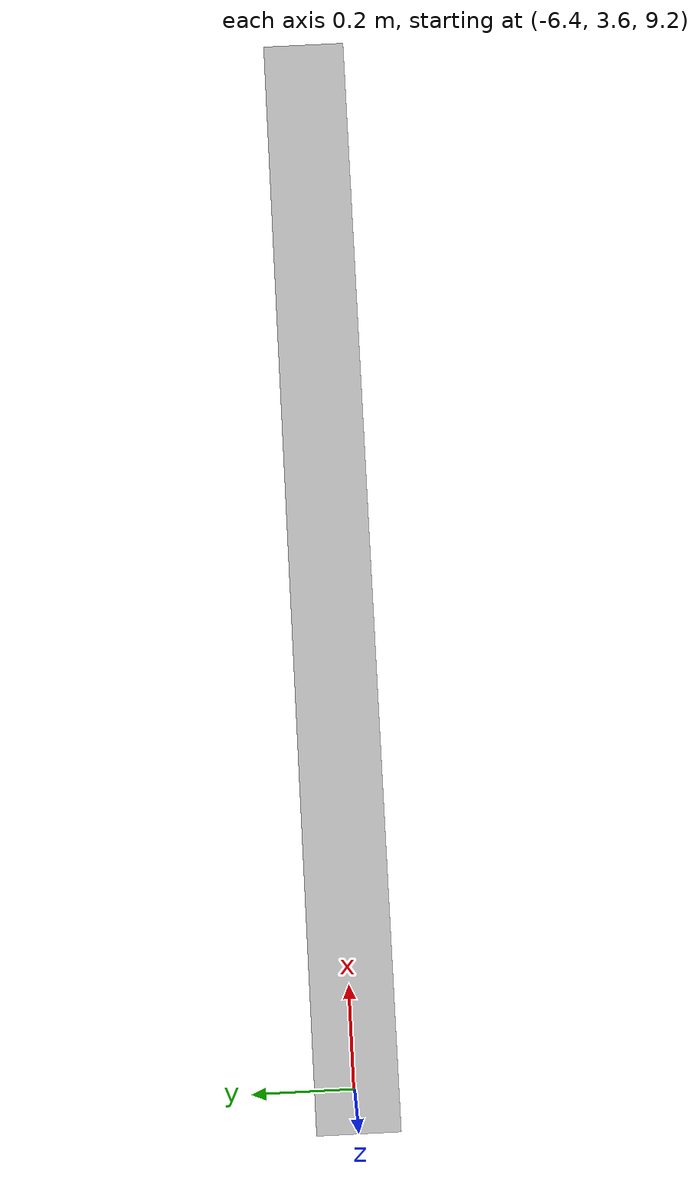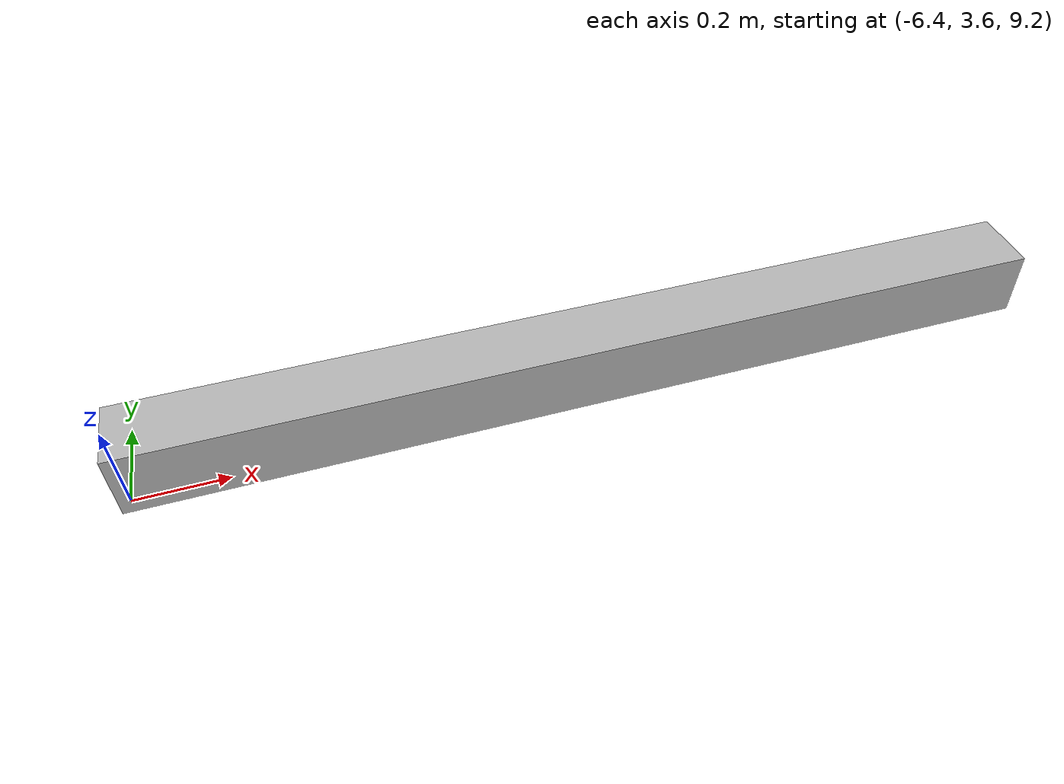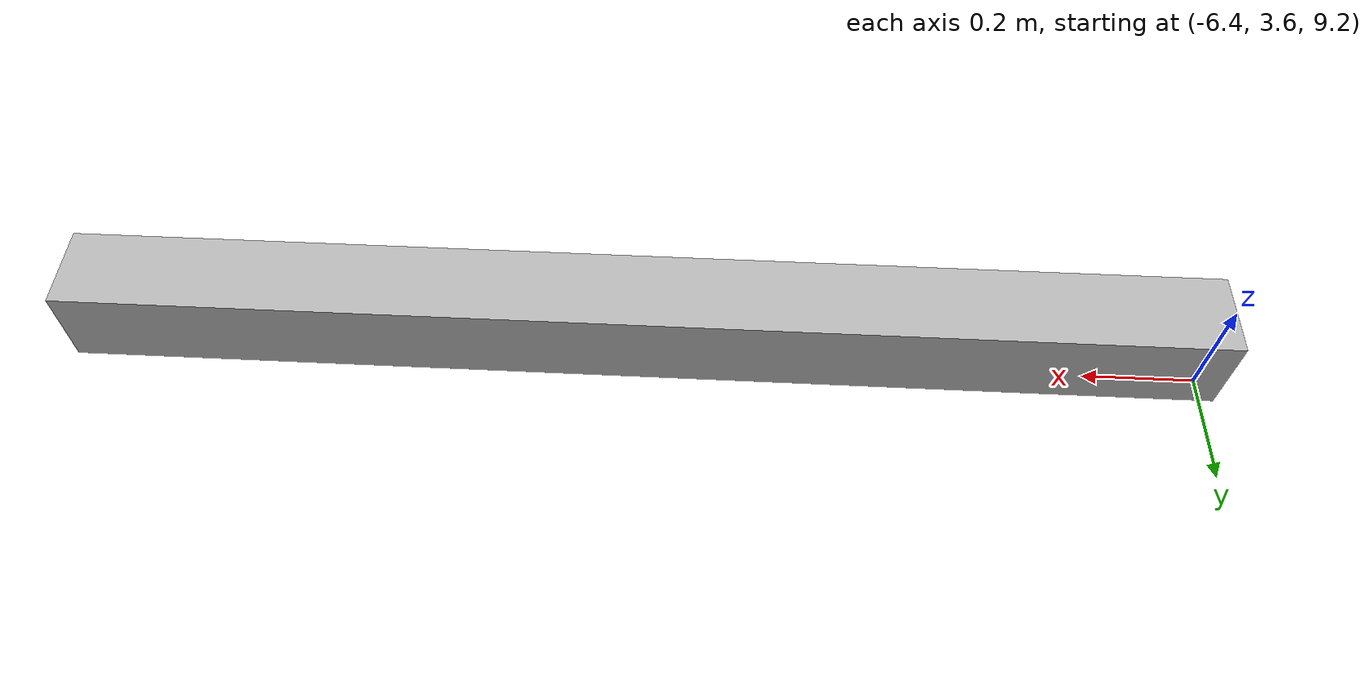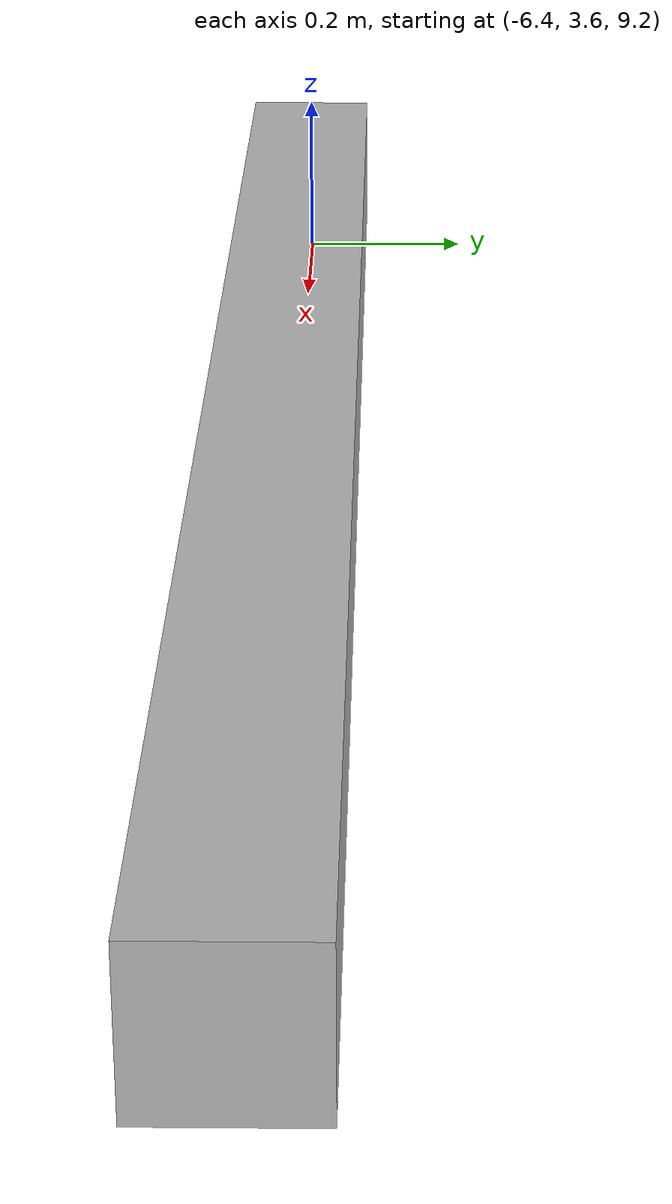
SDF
<sdf version="1.7">
 <world name="default">
  <model name="orthogonal_747_2.000.15_TS">
   <static>1</static>
   <link name="x_link_5_4_0">
    <inertial>
     <mass>1</mass>
     <inertia>
      <ixx>0.166667</ixx>
      <ixy>0</ixy>
      <ixz>0</ixz>
      <iyy>0.166667</iyy>
      <iyz>0</iyz>
      <izz>0.166667</izz>
     </inertia>
    </inertial>
    <pose>1.075 8.6 11.825 0 -0 0</pose>
    <visual name="visual_0">
     <laser_retro>5104</laser_retro>
     <geometry><box><size>2 1e-06 0.15</size></box></geometry>
     <material>
      <script><name>Gazebo/Grey</name><uri>file://media/materials/scripts/gazebo.material</uri></script>
      <shader type="pixel"><normal_map>__default__</normal_map></shader>
      <ambient>0.678 0.498 0.659 1</ambient>
      <diffuse>0.7 0.7 0.7 1</diffuse>
      <specular>0.01 0.01 0.01 1</specular>
      <emissive>0 0 0 1</emissive>
     </material>
     <pose>0 -0.075 0 0 -0 0</pose>
     <transparency>1</transparency>
    </visual>
    <visual name="visual_1">
     <laser_retro>5105</laser_retro>
     <geometry><box><size>2 1e-06 0.15</size></box></geometry>
     <material>
      <script><name>Gazebo/Grey</name><uri>file://media/materials/scripts/gazebo.material</uri></script>
      <shader type="pixel"><normal_map>__default__</normal_map></shader>
      <ambient>0.447 0.624 0.812 1</ambient>
      <diffuse>0.7 0.7 0.7 1</diffuse>
      <specular>0.01 0.01 0.01 1</specular>
      <emissive>0 0 0 1</emissive>
     </material>
     <pose>0 0.075 0 0 -0 0</pose>
     <transparency>1</transparency>
    </visual>
    <visual name="visual_2">
     <laser_retro>5106</laser_retro>
     <geometry><box><size>2 0.15 1e-06</size></box></geometry>
     <material>
      <script><name>Gazebo/Grey</name><uri>file://media/materials/scripts/gazebo.material</uri></script>
      <shader type="pixel"><normal_map>__default__</normal_map></shader>
      <ambient>0.988 0.686 0.243 1</ambient>
      <diffuse>0.7 0.7 0.7 1</diffuse>
      <specular>0.01 0.01 0.01 1</specular>
      <emissive>0 0 0 1</emissive>
     </material>
     <pose>0 0 -0.075 0 -0 0</pose>
     <transparency>1</transparency>
    </visual>
    <visual name="visual_3">
     <laser_retro>5107</laser_retro>
     <geometry><box><size>1e-06 0.15 0.15</size></box></geometry>
     <material>
      <script><name>Gazebo/Grey</name><uri>file://media/materials/scripts/gazebo.material</uri></script>
      <shader type="pixel"><normal_map>__default__</normal_map></shader>
      <ambient>0.988 0.914 0.31 1</ambient>
      <diffuse>0.7 0.7 0.7 1</diffuse>
      <specular>0.01 0.01 0.01 1</specular>
      <emissive>0 0 0 1</emissive>
     </material>
     <pose>1 0 0 0 -0 0</pose>
     <transparency>1</transparency>
    </visual>
    <visual name="visual_4">
     <laser_retro>5108</laser_retro>
     <geometry><box><size>2 0.15 1e-06</size></box></geometry>
     <material>
      <script><name>Gazebo/Grey</name><uri>file://media/materials/scripts/gazebo.material</uri></script>
      <shader type="pixel"><normal_map>__default__</normal_map></shader>
      <ambient>0.937 0.161 0.161 1</ambient>
      <diffuse>0.7 0.7 0.7 1</diffuse>
      <specular>0.01 0.01 0.01 1</specular>
      <emissive>0 0 0 1</emissive>
     </material>
     <pose>0 0 0.075 0 -0 0</pose>
     <transparency>1</transparency>
    </visual>
    <visual name="visual_5">
     <laser_retro>5109</laser_retro>
     <geometry><box><size>1e-06 0.15 0.15</size></box></geometry>
     <material>
      <script><name>Gazebo/Grey</name><uri>file://media/materials/scripts/gazebo.material</uri></script>
      <shader type="pixel"><normal_map>__default__</normal_map></shader>
      <ambient>0.541 0.886 0.204 1</ambient>
      <diffuse>0.7 0.7 0.7 1</diffuse>
      <specular>0.01 0.01 0.01 1</specular>
      <emissive>0 0 0 1</emissive>
     </material>
     <pose>-1 0 0 0 -0 0</pose>
     <transparency>1</transparency>
    </visual>
    <visual name="visual_texture">
     <geometry><box><size>1.9998 0.149985 0.149985</size></box></geometry>
     <material>
      <script>
       <uri>model://BASE_MODELS/simple_block_v2_textured/materials/scripts</uri>
       <uri>model://BASE_MODELS/simple_block_v2_textured/materials/textures</uri>
       <name>metal</name>
      </script>
     </material>
     <laser_retro>5110</laser_retro>
    </visual>
    <collision name="collision">
     <geometry><box><size>2 0.15 0.15</size></box></geometry>
     <surface>
      <friction>
       <ode><mu>1</mu><mu2>1</mu2><fdir1>0 0 0</fdir1><slip1>0</slip1><slip2>0</slip2></ode>
       <torsional>
        <coefficient>1</coefficient>
        <patch_radius>0</patch_radius>
        <surface_radius>0</surface_radius>
        <use_patch_radius>1</use_patch_radius>
        <ode><slip>0</slip></ode>
       </torsional>
      </friction>
      <bounce><restitution_coefficient>0</restitution_coefficient><threshold>1e+06</threshold></bounce>
      <contact>
       <collide_without_contact>0</collide_without_contact>
       <collide_without_contact_bitmask>1</collide_without_contact_bitmask>
       <collide_bitmask>1</collide_bitmask>
       <ode>
        <soft_cfm>0</soft_cfm>
        <soft_erp>0.2</soft_erp>
        <kp>1e+13</kp>
        <kd>1</kd>
        <max_vel>0.01</max_vel>
        <min_depth>0</min_depth>
       </ode>
       <bullet>
        <split_impulse>1</split_impulse>
        <split_impulse_penetration_threshold>-0.01</split_impulse_penetration_threshold>
        <soft_cfm>0</soft_cfm>
        <soft_erp>0.2</soft_erp>
        <kp>1e+13</kp>
        <kd>1</kd>
       </bullet>
      </contact>
     </surface>
    </collision>
   </link>
   <pose>-6.47624 -5 -2.5 0 -0 0</pose>
  </model>
 </world>
</sdf>
